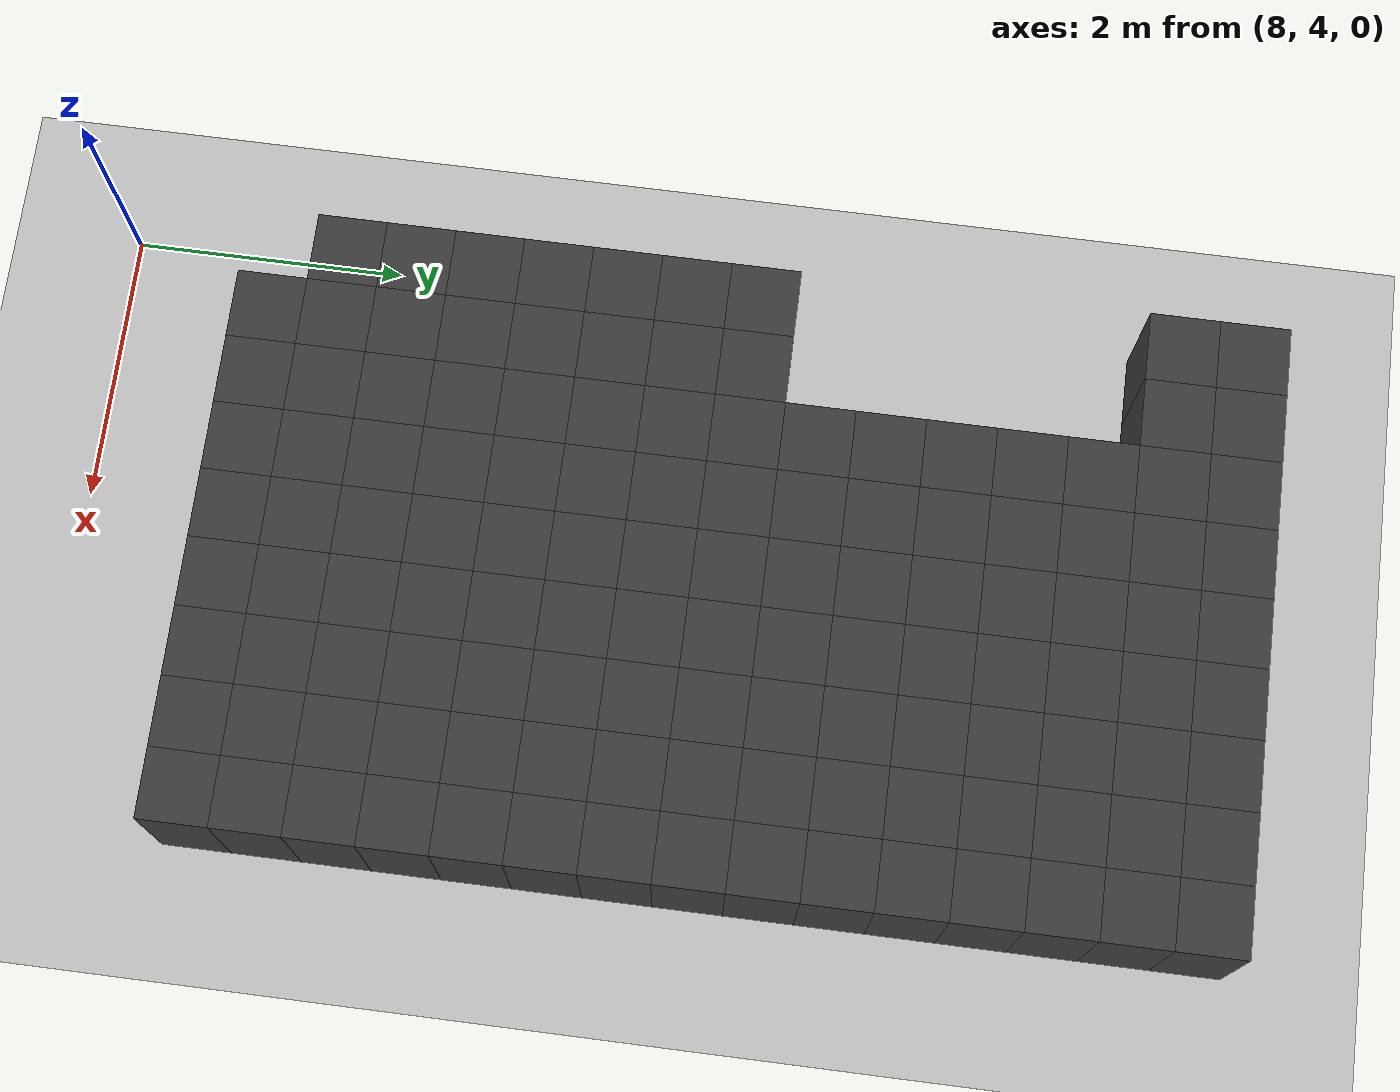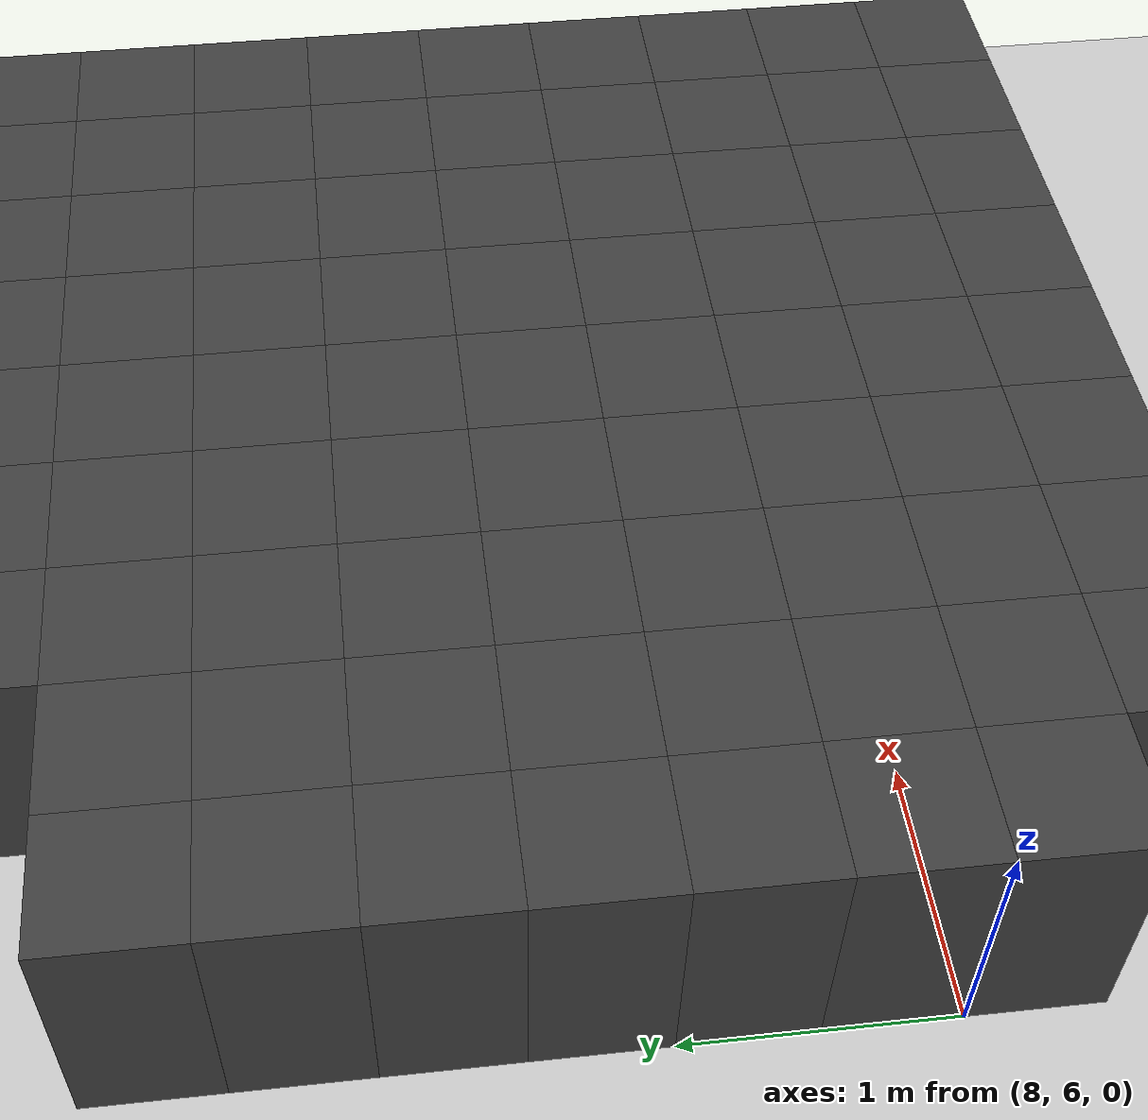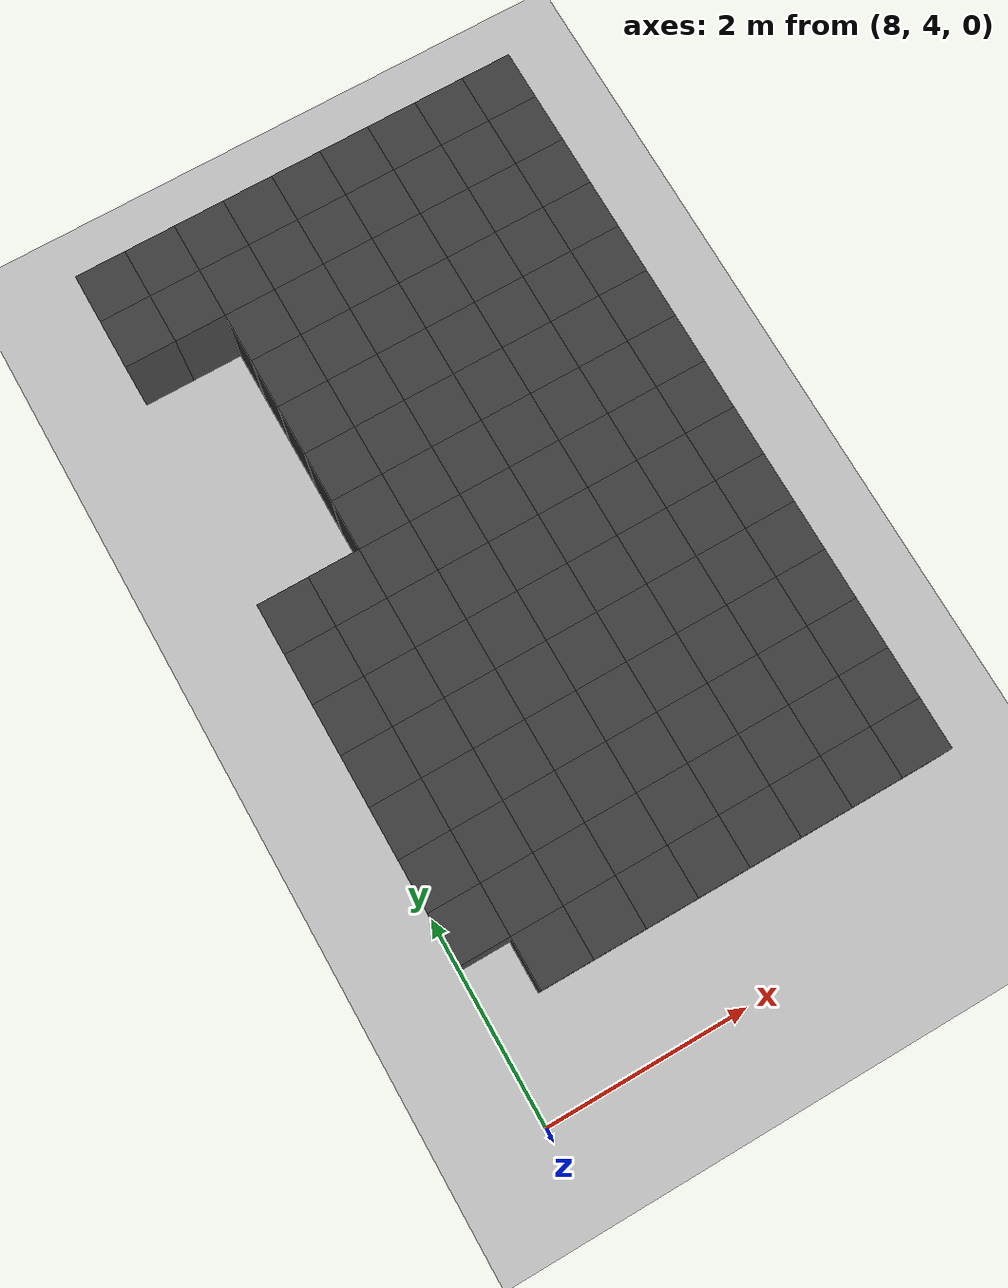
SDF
<sdf version="1.7">
 <world name="map_13820">
  <model name="ground_plane">
   <static>true</static>
   <link name="link">
    <collision name="collision">
     <geometry><plane><normal>0 0 1</normal><size>200 200</size></plane></geometry>
    </collision>
    <visual name="visual">
     <geometry><plane><normal>0 0 1</normal><size>200 200</size></plane></geometry>
     <material><ambient>0.8 0.8 0.8 1</ambient><diffuse>0.8 0.8 0.8 1</diffuse></material>
    </visual>
   </link>
  </model>
  <model name="maze_environment">
   <static>true</static>
   <link name="wall_41">
    <pose>8.250 12.250 0.500 0 0 0</pose>
    <collision name="col"><geometry><box><size>0.5 0.5 1.0</size></box></geometry></collision>
    <visual name="vis">
     <geometry><box><size>0.5 0.5 1.0</size></box></geometry>
     <material><ambient>0.15 0.15 0.15 1</ambient><diffuse>0.25 0.25 0.25 1</diffuse></material>
    </visual>
   </link>
   <link name="wall_42">
    <pose>8.750 12.250 0.500 0 0 0</pose>
    <collision name="col"><geometry><box><size>0.5 0.5 1.0</size></box></geometry></collision>
    <visual name="vis">
     <geometry><box><size>0.5 0.5 1.0</size></box></geometry>
     <material><ambient>0.15 0.15 0.15 1</ambient><diffuse>0.25 0.25 0.25 1</diffuse></material>
    </visual>
   </link>
   <link name="wall_43">
    <pose>9.250 12.250 0.500 0 0 0</pose>
    <collision name="col"><geometry><box><size>0.5 0.5 1.0</size></box></geometry></collision>
    <visual name="vis">
     <geometry><box><size>0.5 0.5 1.0</size></box></geometry>
     <material><ambient>0.15 0.15 0.15 1</ambient><diffuse>0.25 0.25 0.25 1</diffuse></material>
    </visual>
   </link>
   <link name="wall_44">
    <pose>9.750 12.250 0.500 0 0 0</pose>
    <collision name="col"><geometry><box><size>0.5 0.5 1.0</size></box></geometry></collision>
    <visual name="vis">
     <geometry><box><size>0.5 0.5 1.0</size></box></geometry>
     <material><ambient>0.15 0.15 0.15 1</ambient><diffuse>0.25 0.25 0.25 1</diffuse></material>
    </visual>
   </link>
   <link name="wall_45">
    <pose>10.250 12.250 0.500 0 0 0</pose>
    <collision name="col"><geometry><box><size>0.5 0.5 1.0</size></box></geometry></collision>
    <visual name="vis">
     <geometry><box><size>0.5 0.5 1.0</size></box></geometry>
     <material><ambient>0.15 0.15 0.15 1</ambient><diffuse>0.25 0.25 0.25 1</diffuse></material>
    </visual>
   </link>
   <link name="wall_46">
    <pose>10.750 12.250 0.500 0 0 0</pose>
    <collision name="col"><geometry><box><size>0.5 0.5 1.0</size></box></geometry></collision>
    <visual name="vis">
     <geometry><box><size>0.5 0.5 1.0</size></box></geometry>
     <material><ambient>0.15 0.15 0.15 1</ambient><diffuse>0.25 0.25 0.25 1</diffuse></material>
    </visual>
   </link>
   <link name="wall_47">
    <pose>11.250 12.250 0.500 0 0 0</pose>
    <collision name="col"><geometry><box><size>0.5 0.5 1.0</size></box></geometry></collision>
    <visual name="vis">
     <geometry><box><size>0.5 0.5 1.0</size></box></geometry>
     <material><ambient>0.15 0.15 0.15 1</ambient><diffuse>0.25 0.25 0.25 1</diffuse></material>
    </visual>
   </link>
   <link name="wall_48">
    <pose>11.750 12.250 0.500 0 0 0</pose>
    <collision name="col"><geometry><box><size>0.5 0.5 1.0</size></box></geometry></collision>
    <visual name="vis">
     <geometry><box><size>0.5 0.5 1.0</size></box></geometry>
     <material><ambient>0.15 0.15 0.15 1</ambient><diffuse>0.25 0.25 0.25 1</diffuse></material>
    </visual>
   </link>
   <link name="wall_49">
    <pose>12.250 12.250 0.500 0 0 0</pose>
    <collision name="col"><geometry><box><size>0.5 0.5 1.0</size></box></geometry></collision>
    <visual name="vis">
     <geometry><box><size>0.5 0.5 1.0</size></box></geometry>
     <material><ambient>0.15 0.15 0.15 1</ambient><diffuse>0.25 0.25 0.25 1</diffuse></material>
    </visual>
   </link>
   <link name="wall_88">
    <pose>8.250 11.750 0.500 0 0 0</pose>
    <collision name="col"><geometry><box><size>0.5 0.5 1.0</size></box></geometry></collision>
    <visual name="vis">
     <geometry><box><size>0.5 0.5 1.0</size></box></geometry>
     <material><ambient>0.15 0.15 0.15 1</ambient><diffuse>0.25 0.25 0.25 1</diffuse></material>
    </visual>
   </link>
   <link name="wall_89">
    <pose>8.750 11.750 0.500 0 0 0</pose>
    <collision name="col"><geometry><box><size>0.5 0.5 1.0</size></box></geometry></collision>
    <visual name="vis">
     <geometry><box><size>0.5 0.5 1.0</size></box></geometry>
     <material><ambient>0.15 0.15 0.15 1</ambient><diffuse>0.25 0.25 0.25 1</diffuse></material>
    </visual>
   </link>
   <link name="wall_90">
    <pose>9.250 11.750 0.500 0 0 0</pose>
    <collision name="col"><geometry><box><size>0.5 0.5 1.0</size></box></geometry></collision>
    <visual name="vis">
     <geometry><box><size>0.5 0.5 1.0</size></box></geometry>
     <material><ambient>0.15 0.15 0.15 1</ambient><diffuse>0.25 0.25 0.25 1</diffuse></material>
    </visual>
   </link>
   <link name="wall_91">
    <pose>9.750 11.750 0.500 0 0 0</pose>
    <collision name="col"><geometry><box><size>0.5 0.5 1.0</size></box></geometry></collision>
    <visual name="vis">
     <geometry><box><size>0.5 0.5 1.0</size></box></geometry>
     <material><ambient>0.15 0.15 0.15 1</ambient><diffuse>0.25 0.25 0.25 1</diffuse></material>
    </visual>
   </link>
   <link name="wall_92">
    <pose>10.250 11.750 0.500 0 0 0</pose>
    <collision name="col"><geometry><box><size>0.5 0.5 1.0</size></box></geometry></collision>
    <visual name="vis">
     <geometry><box><size>0.5 0.5 1.0</size></box></geometry>
     <material><ambient>0.15 0.15 0.15 1</ambient><diffuse>0.25 0.25 0.25 1</diffuse></material>
    </visual>
   </link>
   <link name="wall_93">
    <pose>10.750 11.750 0.500 0 0 0</pose>
    <collision name="col"><geometry><box><size>0.5 0.5 1.0</size></box></geometry></collision>
    <visual name="vis">
     <geometry><box><size>0.5 0.5 1.0</size></box></geometry>
     <material><ambient>0.15 0.15 0.15 1</ambient><diffuse>0.25 0.25 0.25 1</diffuse></material>
    </visual>
   </link>
   <link name="wall_94">
    <pose>11.250 11.750 0.500 0 0 0</pose>
    <collision name="col"><geometry><box><size>0.5 0.5 1.0</size></box></geometry></collision>
    <visual name="vis">
     <geometry><box><size>0.5 0.5 1.0</size></box></geometry>
     <material><ambient>0.15 0.15 0.15 1</ambient><diffuse>0.25 0.25 0.25 1</diffuse></material>
    </visual>
   </link>
   <link name="wall_95">
    <pose>11.750 11.750 0.500 0 0 0</pose>
    <collision name="col"><geometry><box><size>0.5 0.5 1.0</size></box></geometry></collision>
    <visual name="vis">
     <geometry><box><size>0.5 0.5 1.0</size></box></geometry>
     <material><ambient>0.15 0.15 0.15 1</ambient><diffuse>0.25 0.25 0.25 1</diffuse></material>
    </visual>
   </link>
   <link name="wall_96">
    <pose>12.250 11.750 0.500 0 0 0</pose>
    <collision name="col"><geometry><box><size>0.5 0.5 1.0</size></box></geometry></collision>
    <visual name="vis">
     <geometry><box><size>0.5 0.5 1.0</size></box></geometry>
     <material><ambient>0.15 0.15 0.15 1</ambient><diffuse>0.25 0.25 0.25 1</diffuse></material>
    </visual>
   </link>
   <link name="wall_117">
    <pose>9.250 11.250 0.500 0 0 0</pose>
    <collision name="col"><geometry><box><size>0.5 0.5 1.0</size></box></geometry></collision>
    <visual name="vis">
     <geometry><box><size>0.5 0.5 1.0</size></box></geometry>
     <material><ambient>0.15 0.15 0.15 1</ambient><diffuse>0.25 0.25 0.25 1</diffuse></material>
    </visual>
   </link>
   <link name="wall_118">
    <pose>9.750 11.250 0.500 0 0 0</pose>
    <collision name="col"><geometry><box><size>0.5 0.5 1.0</size></box></geometry></collision>
    <visual name="vis">
     <geometry><box><size>0.5 0.5 1.0</size></box></geometry>
     <material><ambient>0.15 0.15 0.15 1</ambient><diffuse>0.25 0.25 0.25 1</diffuse></material>
    </visual>
   </link>
   <link name="wall_119">
    <pose>10.250 11.250 0.500 0 0 0</pose>
    <collision name="col"><geometry><box><size>0.5 0.5 1.0</size></box></geometry></collision>
    <visual name="vis">
     <geometry><box><size>0.5 0.5 1.0</size></box></geometry>
     <material><ambient>0.15 0.15 0.15 1</ambient><diffuse>0.25 0.25 0.25 1</diffuse></material>
    </visual>
   </link>
   <link name="wall_120">
    <pose>10.750 11.250 0.500 0 0 0</pose>
    <collision name="col"><geometry><box><size>0.5 0.5 1.0</size></box></geometry></collision>
    <visual name="vis">
     <geometry><box><size>0.5 0.5 1.0</size></box></geometry>
     <material><ambient>0.15 0.15 0.15 1</ambient><diffuse>0.25 0.25 0.25 1</diffuse></material>
    </visual>
   </link>
   <link name="wall_121">
    <pose>11.250 11.250 0.500 0 0 0</pose>
    <collision name="col"><geometry><box><size>0.5 0.5 1.0</size></box></geometry></collision>
    <visual name="vis">
     <geometry><box><size>0.5 0.5 1.0</size></box></geometry>
     <material><ambient>0.15 0.15 0.15 1</ambient><diffuse>0.25 0.25 0.25 1</diffuse></material>
    </visual>
   </link>
   <link name="wall_122">
    <pose>11.750 11.250 0.500 0 0 0</pose>
    <collision name="col"><geometry><box><size>0.5 0.5 1.0</size></box></geometry></collision>
    <visual name="vis">
     <geometry><box><size>0.5 0.5 1.0</size></box></geometry>
     <material><ambient>0.15 0.15 0.15 1</ambient><diffuse>0.25 0.25 0.25 1</diffuse></material>
    </visual>
   </link>
   <link name="wall_123">
    <pose>12.250 11.250 0.500 0 0 0</pose>
    <collision name="col"><geometry><box><size>0.5 0.5 1.0</size></box></geometry></collision>
    <visual name="vis">
     <geometry><box><size>0.5 0.5 1.0</size></box></geometry>
     <material><ambient>0.15 0.15 0.15 1</ambient><diffuse>0.25 0.25 0.25 1</diffuse></material>
    </visual>
   </link>
   <link name="wall_144">
    <pose>9.250 10.750 0.500 0 0 0</pose>
    <collision name="col"><geometry><box><size>0.5 0.5 1.0</size></box></geometry></collision>
    <visual name="vis">
     <geometry><box><size>0.5 0.5 1.0</size></box></geometry>
     <material><ambient>0.15 0.15 0.15 1</ambient><diffuse>0.25 0.25 0.25 1</diffuse></material>
    </visual>
   </link>
   <link name="wall_145">
    <pose>9.750 10.750 0.500 0 0 0</pose>
    <collision name="col"><geometry><box><size>0.5 0.5 1.0</size></box></geometry></collision>
    <visual name="vis">
     <geometry><box><size>0.5 0.5 1.0</size></box></geometry>
     <material><ambient>0.15 0.15 0.15 1</ambient><diffuse>0.25 0.25 0.25 1</diffuse></material>
    </visual>
   </link>
   <link name="wall_146">
    <pose>10.250 10.750 0.500 0 0 0</pose>
    <collision name="col"><geometry><box><size>0.5 0.5 1.0</size></box></geometry></collision>
    <visual name="vis">
     <geometry><box><size>0.5 0.5 1.0</size></box></geometry>
     <material><ambient>0.15 0.15 0.15 1</ambient><diffuse>0.25 0.25 0.25 1</diffuse></material>
    </visual>
   </link>
   <link name="wall_147">
    <pose>10.750 10.750 0.500 0 0 0</pose>
    <collision name="col"><geometry><box><size>0.5 0.5 1.0</size></box></geometry></collision>
    <visual name="vis">
     <geometry><box><size>0.5 0.5 1.0</size></box></geometry>
     <material><ambient>0.15 0.15 0.15 1</ambient><diffuse>0.25 0.25 0.25 1</diffuse></material>
    </visual>
   </link>
   <link name="wall_148">
    <pose>11.250 10.750 0.500 0 0 0</pose>
    <collision name="col"><geometry><box><size>0.5 0.5 1.0</size></box></geometry></collision>
    <visual name="vis">
     <geometry><box><size>0.5 0.5 1.0</size></box></geometry>
     <material><ambient>0.15 0.15 0.15 1</ambient><diffuse>0.25 0.25 0.25 1</diffuse></material>
    </visual>
   </link>
   <link name="wall_149">
    <pose>11.750 10.750 0.500 0 0 0</pose>
    <collision name="col"><geometry><box><size>0.5 0.5 1.0</size></box></geometry></collision>
    <visual name="vis">
     <geometry><box><size>0.5 0.5 1.0</size></box></geometry>
     <material><ambient>0.15 0.15 0.15 1</ambient><diffuse>0.25 0.25 0.25 1</diffuse></material>
    </visual>
   </link>
   <link name="wall_150">
    <pose>12.250 10.750 0.500 0 0 0</pose>
    <collision name="col"><geometry><box><size>0.5 0.5 1.0</size></box></geometry></collision>
    <visual name="vis">
     <geometry><box><size>0.5 0.5 1.0</size></box></geometry>
     <material><ambient>0.15 0.15 0.15 1</ambient><diffuse>0.25 0.25 0.25 1</diffuse></material>
    </visual>
   </link>
   <link name="wall_163">
    <pose>9.250 10.250 0.500 0 0 0</pose>
    <collision name="col"><geometry><box><size>0.5 0.5 1.0</size></box></geometry></collision>
    <visual name="vis">
     <geometry><box><size>0.5 0.5 1.0</size></box></geometry>
     <material><ambient>0.15 0.15 0.15 1</ambient><diffuse>0.25 0.25 0.25 1</diffuse></material>
    </visual>
   </link>
   <link name="wall_164">
    <pose>9.750 10.250 0.500 0 0 0</pose>
    <collision name="col"><geometry><box><size>0.5 0.5 1.0</size></box></geometry></collision>
    <visual name="vis">
     <geometry><box><size>0.5 0.5 1.0</size></box></geometry>
     <material><ambient>0.15 0.15 0.15 1</ambient><diffuse>0.25 0.25 0.25 1</diffuse></material>
    </visual>
   </link>
   <link name="wall_165">
    <pose>10.250 10.250 0.500 0 0 0</pose>
    <collision name="col"><geometry><box><size>0.5 0.5 1.0</size></box></geometry></collision>
    <visual name="vis">
     <geometry><box><size>0.5 0.5 1.0</size></box></geometry>
     <material><ambient>0.15 0.15 0.15 1</ambient><diffuse>0.25 0.25 0.25 1</diffuse></material>
    </visual>
   </link>
   <link name="wall_166">
    <pose>10.750 10.250 0.500 0 0 0</pose>
    <collision name="col"><geometry><box><size>0.5 0.5 1.0</size></box></geometry></collision>
    <visual name="vis">
     <geometry><box><size>0.5 0.5 1.0</size></box></geometry>
     <material><ambient>0.15 0.15 0.15 1</ambient><diffuse>0.25 0.25 0.25 1</diffuse></material>
    </visual>
   </link>
   <link name="wall_167">
    <pose>11.250 10.250 0.500 0 0 0</pose>
    <collision name="col"><geometry><box><size>0.5 0.5 1.0</size></box></geometry></collision>
    <visual name="vis">
     <geometry><box><size>0.5 0.5 1.0</size></box></geometry>
     <material><ambient>0.15 0.15 0.15 1</ambient><diffuse>0.25 0.25 0.25 1</diffuse></material>
    </visual>
   </link>
   <link name="wall_168">
    <pose>11.750 10.250 0.500 0 0 0</pose>
    <collision name="col"><geometry><box><size>0.5 0.5 1.0</size></box></geometry></collision>
    <visual name="vis">
     <geometry><box><size>0.5 0.5 1.0</size></box></geometry>
     <material><ambient>0.15 0.15 0.15 1</ambient><diffuse>0.25 0.25 0.25 1</diffuse></material>
    </visual>
   </link>
   <link name="wall_169">
    <pose>12.250 10.250 0.500 0 0 0</pose>
    <collision name="col"><geometry><box><size>0.5 0.5 1.0</size></box></geometry></collision>
    <visual name="vis">
     <geometry><box><size>0.5 0.5 1.0</size></box></geometry>
     <material><ambient>0.15 0.15 0.15 1</ambient><diffuse>0.25 0.25 0.25 1</diffuse></material>
    </visual>
   </link>
   <link name="wall_185">
    <pose>9.250 9.750 0.500 0 0 0</pose>
    <collision name="col"><geometry><box><size>0.5 0.5 1.0</size></box></geometry></collision>
    <visual name="vis">
     <geometry><box><size>0.5 0.5 1.0</size></box></geometry>
     <material><ambient>0.15 0.15 0.15 1</ambient><diffuse>0.25 0.25 0.25 1</diffuse></material>
    </visual>
   </link>
   <link name="wall_186">
    <pose>9.750 9.750 0.500 0 0 0</pose>
    <collision name="col"><geometry><box><size>0.5 0.5 1.0</size></box></geometry></collision>
    <visual name="vis">
     <geometry><box><size>0.5 0.5 1.0</size></box></geometry>
     <material><ambient>0.15 0.15 0.15 1</ambient><diffuse>0.25 0.25 0.25 1</diffuse></material>
    </visual>
   </link>
   <link name="wall_187">
    <pose>10.250 9.750 0.500 0 0 0</pose>
    <collision name="col"><geometry><box><size>0.5 0.5 1.0</size></box></geometry></collision>
    <visual name="vis">
     <geometry><box><size>0.5 0.5 1.0</size></box></geometry>
     <material><ambient>0.15 0.15 0.15 1</ambient><diffuse>0.25 0.25 0.25 1</diffuse></material>
    </visual>
   </link>
   <link name="wall_188">
    <pose>10.750 9.750 0.500 0 0 0</pose>
    <collision name="col"><geometry><box><size>0.5 0.5 1.0</size></box></geometry></collision>
    <visual name="vis">
     <geometry><box><size>0.5 0.5 1.0</size></box></geometry>
     <material><ambient>0.15 0.15 0.15 1</ambient><diffuse>0.25 0.25 0.25 1</diffuse></material>
    </visual>
   </link>
   <link name="wall_189">
    <pose>11.250 9.750 0.500 0 0 0</pose>
    <collision name="col"><geometry><box><size>0.5 0.5 1.0</size></box></geometry></collision>
    <visual name="vis">
     <geometry><box><size>0.5 0.5 1.0</size></box></geometry>
     <material><ambient>0.15 0.15 0.15 1</ambient><diffuse>0.25 0.25 0.25 1</diffuse></material>
    </visual>
   </link>
   <link name="wall_190">
    <pose>11.750 9.750 0.500 0 0 0</pose>
    <collision name="col"><geometry><box><size>0.5 0.5 1.0</size></box></geometry></collision>
    <visual name="vis">
     <geometry><box><size>0.5 0.5 1.0</size></box></geometry>
     <material><ambient>0.15 0.15 0.15 1</ambient><diffuse>0.25 0.25 0.25 1</diffuse></material>
    </visual>
   </link>
   <link name="wall_191">
    <pose>12.250 9.750 0.500 0 0 0</pose>
    <collision name="col"><geometry><box><size>0.5 0.5 1.0</size></box></geometry></collision>
    <visual name="vis">
     <geometry><box><size>0.5 0.5 1.0</size></box></geometry>
     <material><ambient>0.15 0.15 0.15 1</ambient><diffuse>0.25 0.25 0.25 1</diffuse></material>
    </visual>
   </link>
   <link name="wall_208">
    <pose>9.250 9.250 0.500 0 0 0</pose>
    <collision name="col"><geometry><box><size>0.5 0.5 1.0</size></box></geometry></collision>
    <visual name="vis">
     <geometry><box><size>0.5 0.5 1.0</size></box></geometry>
     <material><ambient>0.15 0.15 0.15 1</ambient><diffuse>0.25 0.25 0.25 1</diffuse></material>
    </visual>
   </link>
   <link name="wall_209">
    <pose>9.750 9.250 0.500 0 0 0</pose>
    <collision name="col"><geometry><box><size>0.5 0.5 1.0</size></box></geometry></collision>
    <visual name="vis">
     <geometry><box><size>0.5 0.5 1.0</size></box></geometry>
     <material><ambient>0.15 0.15 0.15 1</ambient><diffuse>0.25 0.25 0.25 1</diffuse></material>
    </visual>
   </link>
   <link name="wall_210">
    <pose>10.250 9.250 0.500 0 0 0</pose>
    <collision name="col"><geometry><box><size>0.5 0.5 1.0</size></box></geometry></collision>
    <visual name="vis">
     <geometry><box><size>0.5 0.5 1.0</size></box></geometry>
     <material><ambient>0.15 0.15 0.15 1</ambient><diffuse>0.25 0.25 0.25 1</diffuse></material>
    </visual>
   </link>
   <link name="wall_211">
    <pose>10.750 9.250 0.500 0 0 0</pose>
    <collision name="col"><geometry><box><size>0.5 0.5 1.0</size></box></geometry></collision>
    <visual name="vis">
     <geometry><box><size>0.5 0.5 1.0</size></box></geometry>
     <material><ambient>0.15 0.15 0.15 1</ambient><diffuse>0.25 0.25 0.25 1</diffuse></material>
    </visual>
   </link>
   <link name="wall_212">
    <pose>11.250 9.250 0.500 0 0 0</pose>
    <collision name="col"><geometry><box><size>0.5 0.5 1.0</size></box></geometry></collision>
    <visual name="vis">
     <geometry><box><size>0.5 0.5 1.0</size></box></geometry>
     <material><ambient>0.15 0.15 0.15 1</ambient><diffuse>0.25 0.25 0.25 1</diffuse></material>
    </visual>
   </link>
   <link name="wall_213">
    <pose>11.750 9.250 0.500 0 0 0</pose>
    <collision name="col"><geometry><box><size>0.5 0.5 1.0</size></box></geometry></collision>
    <visual name="vis">
     <geometry><box><size>0.5 0.5 1.0</size></box></geometry>
     <material><ambient>0.15 0.15 0.15 1</ambient><diffuse>0.25 0.25 0.25 1</diffuse></material>
    </visual>
   </link>
   <link name="wall_214">
    <pose>12.250 9.250 0.500 0 0 0</pose>
    <collision name="col"><geometry><box><size>0.5 0.5 1.0</size></box></geometry></collision>
    <visual name="vis">
     <geometry><box><size>0.5 0.5 1.0</size></box></geometry>
     <material><ambient>0.15 0.15 0.15 1</ambient><diffuse>0.25 0.25 0.25 1</diffuse></material>
    </visual>
   </link>
   <link name="wall_235">
    <pose>8.250 8.750 0.500 0 0 0</pose>
    <collision name="col"><geometry><box><size>0.5 0.5 1.0</size></box></geometry></collision>
    <visual name="vis">
     <geometry><box><size>0.5 0.5 1.0</size></box></geometry>
     <material><ambient>0.15 0.15 0.15 1</ambient><diffuse>0.25 0.25 0.25 1</diffuse></material>
    </visual>
   </link>
   <link name="wall_236">
    <pose>8.750 8.750 0.500 0 0 0</pose>
    <collision name="col"><geometry><box><size>0.5 0.5 1.0</size></box></geometry></collision>
    <visual name="vis">
     <geometry><box><size>0.5 0.5 1.0</size></box></geometry>
     <material><ambient>0.15 0.15 0.15 1</ambient><diffuse>0.25 0.25 0.25 1</diffuse></material>
    </visual>
   </link>
   <link name="wall_237">
    <pose>9.250 8.750 0.500 0 0 0</pose>
    <collision name="col"><geometry><box><size>0.5 0.5 1.0</size></box></geometry></collision>
    <visual name="vis">
     <geometry><box><size>0.5 0.5 1.0</size></box></geometry>
     <material><ambient>0.15 0.15 0.15 1</ambient><diffuse>0.25 0.25 0.25 1</diffuse></material>
    </visual>
   </link>
   <link name="wall_238">
    <pose>9.750 8.750 0.500 0 0 0</pose>
    <collision name="col"><geometry><box><size>0.5 0.5 1.0</size></box></geometry></collision>
    <visual name="vis">
     <geometry><box><size>0.5 0.5 1.0</size></box></geometry>
     <material><ambient>0.15 0.15 0.15 1</ambient><diffuse>0.25 0.25 0.25 1</diffuse></material>
    </visual>
   </link>
   <link name="wall_239">
    <pose>10.250 8.750 0.500 0 0 0</pose>
    <collision name="col"><geometry><box><size>0.5 0.5 1.0</size></box></geometry></collision>
    <visual name="vis">
     <geometry><box><size>0.5 0.5 1.0</size></box></geometry>
     <material><ambient>0.15 0.15 0.15 1</ambient><diffuse>0.25 0.25 0.25 1</diffuse></material>
    </visual>
   </link>
   <link name="wall_240">
    <pose>10.750 8.750 0.500 0 0 0</pose>
    <collision name="col"><geometry><box><size>0.5 0.5 1.0</size></box></geometry></collision>
    <visual name="vis">
     <geometry><box><size>0.5 0.5 1.0</size></box></geometry>
     <material><ambient>0.15 0.15 0.15 1</ambient><diffuse>0.25 0.25 0.25 1</diffuse></material>
    </visual>
   </link>
   <link name="wall_241">
    <pose>11.250 8.750 0.500 0 0 0</pose>
    <collision name="col"><geometry><box><size>0.5 0.5 1.0</size></box></geometry></collision>
    <visual name="vis">
     <geometry><box><size>0.5 0.5 1.0</size></box></geometry>
     <material><ambient>0.15 0.15 0.15 1</ambient><diffuse>0.25 0.25 0.25 1</diffuse></material>
    </visual>
   </link>
   <link name="wall_242">
    <pose>11.750 8.750 0.500 0 0 0</pose>
    <collision name="col"><geometry><box><size>0.5 0.5 1.0</size></box></geometry></collision>
    <visual name="vis">
     <geometry><box><size>0.5 0.5 1.0</size></box></geometry>
     <material><ambient>0.15 0.15 0.15 1</ambient><diffuse>0.25 0.25 0.25 1</diffuse></material>
    </visual>
   </link>
   <link name="wall_243">
    <pose>12.250 8.750 0.500 0 0 0</pose>
    <collision name="col"><geometry><box><size>0.5 0.5 1.0</size></box></geometry></collision>
    <visual name="vis">
     <geometry><box><size>0.5 0.5 1.0</size></box></geometry>
     <material><ambient>0.15 0.15 0.15 1</ambient><diffuse>0.25 0.25 0.25 1</diffuse></material>
    </visual>
   </link>
   <link name="wall_271">
    <pose>8.250 8.250 0.500 0 0 0</pose>
    <collision name="col"><geometry><box><size>0.5 0.5 1.0</size></box></geometry></collision>
    <visual name="vis">
     <geometry><box><size>0.5 0.5 1.0</size></box></geometry>
     <material><ambient>0.15 0.15 0.15 1</ambient><diffuse>0.25 0.25 0.25 1</diffuse></material>
    </visual>
   </link>
   <link name="wall_272">
    <pose>8.750 8.250 0.500 0 0 0</pose>
    <collision name="col"><geometry><box><size>0.5 0.5 1.0</size></box></geometry></collision>
    <visual name="vis">
     <geometry><box><size>0.5 0.5 1.0</size></box></geometry>
     <material><ambient>0.15 0.15 0.15 1</ambient><diffuse>0.25 0.25 0.25 1</diffuse></material>
    </visual>
   </link>
   <link name="wall_273">
    <pose>9.250 8.250 0.500 0 0 0</pose>
    <collision name="col"><geometry><box><size>0.5 0.5 1.0</size></box></geometry></collision>
    <visual name="vis">
     <geometry><box><size>0.5 0.5 1.0</size></box></geometry>
     <material><ambient>0.15 0.15 0.15 1</ambient><diffuse>0.25 0.25 0.25 1</diffuse></material>
    </visual>
   </link>
   <link name="wall_274">
    <pose>9.750 8.250 0.500 0 0 0</pose>
    <collision name="col"><geometry><box><size>0.5 0.5 1.0</size></box></geometry></collision>
    <visual name="vis">
     <geometry><box><size>0.5 0.5 1.0</size></box></geometry>
     <material><ambient>0.15 0.15 0.15 1</ambient><diffuse>0.25 0.25 0.25 1</diffuse></material>
    </visual>
   </link>
   <link name="wall_275">
    <pose>10.250 8.250 0.500 0 0 0</pose>
    <collision name="col"><geometry><box><size>0.5 0.5 1.0</size></box></geometry></collision>
    <visual name="vis">
     <geometry><box><size>0.5 0.5 1.0</size></box></geometry>
     <material><ambient>0.15 0.15 0.15 1</ambient><diffuse>0.25 0.25 0.25 1</diffuse></material>
    </visual>
   </link>
   <link name="wall_276">
    <pose>10.750 8.250 0.500 0 0 0</pose>
    <collision name="col"><geometry><box><size>0.5 0.5 1.0</size></box></geometry></collision>
    <visual name="vis">
     <geometry><box><size>0.5 0.5 1.0</size></box></geometry>
     <material><ambient>0.15 0.15 0.15 1</ambient><diffuse>0.25 0.25 0.25 1</diffuse></material>
    </visual>
   </link>
   <link name="wall_277">
    <pose>11.250 8.250 0.500 0 0 0</pose>
    <collision name="col"><geometry><box><size>0.5 0.5 1.0</size></box></geometry></collision>
    <visual name="vis">
     <geometry><box><size>0.5 0.5 1.0</size></box></geometry>
     <material><ambient>0.15 0.15 0.15 1</ambient><diffuse>0.25 0.25 0.25 1</diffuse></material>
    </visual>
   </link>
   <link name="wall_278">
    <pose>11.750 8.250 0.500 0 0 0</pose>
    <collision name="col"><geometry><box><size>0.5 0.5 1.0</size></box></geometry></collision>
    <visual name="vis">
     <geometry><box><size>0.5 0.5 1.0</size></box></geometry>
     <material><ambient>0.15 0.15 0.15 1</ambient><diffuse>0.25 0.25 0.25 1</diffuse></material>
    </visual>
   </link>
   <link name="wall_279">
    <pose>12.250 8.250 0.500 0 0 0</pose>
    <collision name="col"><geometry><box><size>0.5 0.5 1.0</size></box></geometry></collision>
    <visual name="vis">
     <geometry><box><size>0.5 0.5 1.0</size></box></geometry>
     <material><ambient>0.15 0.15 0.15 1</ambient><diffuse>0.25 0.25 0.25 1</diffuse></material>
    </visual>
   </link>
   <link name="wall_310">
    <pose>8.250 7.750 0.500 0 0 0</pose>
    <collision name="col"><geometry><box><size>0.5 0.5 1.0</size></box></geometry></collision>
    <visual name="vis">
     <geometry><box><size>0.5 0.5 1.0</size></box></geometry>
     <material><ambient>0.15 0.15 0.15 1</ambient><diffuse>0.25 0.25 0.25 1</diffuse></material>
    </visual>
   </link>
   <link name="wall_311">
    <pose>8.750 7.750 0.500 0 0 0</pose>
    <collision name="col"><geometry><box><size>0.5 0.5 1.0</size></box></geometry></collision>
    <visual name="vis">
     <geometry><box><size>0.5 0.5 1.0</size></box></geometry>
     <material><ambient>0.15 0.15 0.15 1</ambient><diffuse>0.25 0.25 0.25 1</diffuse></material>
    </visual>
   </link>
   <link name="wall_312">
    <pose>9.250 7.750 0.500 0 0 0</pose>
    <collision name="col"><geometry><box><size>0.5 0.5 1.0</size></box></geometry></collision>
    <visual name="vis">
     <geometry><box><size>0.5 0.5 1.0</size></box></geometry>
     <material><ambient>0.15 0.15 0.15 1</ambient><diffuse>0.25 0.25 0.25 1</diffuse></material>
    </visual>
   </link>
   <link name="wall_313">
    <pose>9.750 7.750 0.500 0 0 0</pose>
    <collision name="col"><geometry><box><size>0.5 0.5 1.0</size></box></geometry></collision>
    <visual name="vis">
     <geometry><box><size>0.5 0.5 1.0</size></box></geometry>
     <material><ambient>0.15 0.15 0.15 1</ambient><diffuse>0.25 0.25 0.25 1</diffuse></material>
    </visual>
   </link>
   <link name="wall_314">
    <pose>10.250 7.750 0.500 0 0 0</pose>
    <collision name="col"><geometry><box><size>0.5 0.5 1.0</size></box></geometry></collision>
    <visual name="vis">
     <geometry><box><size>0.5 0.5 1.0</size></box></geometry>
     <material><ambient>0.15 0.15 0.15 1</ambient><diffuse>0.25 0.25 0.25 1</diffuse></material>
    </visual>
   </link>
   <link name="wall_315">
    <pose>10.750 7.750 0.500 0 0 0</pose>
    <collision name="col"><geometry><box><size>0.5 0.5 1.0</size></box></geometry></collision>
    <visual name="vis">
     <geometry><box><size>0.5 0.5 1.0</size></box></geometry>
     <material><ambient>0.15 0.15 0.15 1</ambient><diffuse>0.25 0.25 0.25 1</diffuse></material>
    </visual>
   </link>
   <link name="wall_316">
    <pose>11.250 7.750 0.500 0 0 0</pose>
    <collision name="col"><geometry><box><size>0.5 0.5 1.0</size></box></geometry></collision>
    <visual name="vis">
     <geometry><box><size>0.5 0.5 1.0</size></box></geometry>
     <material><ambient>0.15 0.15 0.15 1</ambient><diffuse>0.25 0.25 0.25 1</diffuse></material>
    </visual>
   </link>
   <link name="wall_317">
    <pose>11.750 7.750 0.500 0 0 0</pose>
    <collision name="col"><geometry><box><size>0.5 0.5 1.0</size></box></geometry></collision>
    <visual name="vis">
     <geometry><box><size>0.5 0.5 1.0</size></box></geometry>
     <material><ambient>0.15 0.15 0.15 1</ambient><diffuse>0.25 0.25 0.25 1</diffuse></material>
    </visual>
   </link>
   <link name="wall_318">
    <pose>12.250 7.750 0.500 0 0 0</pose>
    <collision name="col"><geometry><box><size>0.5 0.5 1.0</size></box></geometry></collision>
    <visual name="vis">
     <geometry><box><size>0.5 0.5 1.0</size></box></geometry>
     <material><ambient>0.15 0.15 0.15 1</ambient><diffuse>0.25 0.25 0.25 1</diffuse></material>
    </visual>
   </link>
   <link name="wall_345">
    <pose>8.250 7.250 0.500 0 0 0</pose>
    <collision name="col"><geometry><box><size>0.5 0.5 1.0</size></box></geometry></collision>
    <visual name="vis">
     <geometry><box><size>0.5 0.5 1.0</size></box></geometry>
     <material><ambient>0.15 0.15 0.15 1</ambient><diffuse>0.25 0.25 0.25 1</diffuse></material>
    </visual>
   </link>
   <link name="wall_346">
    <pose>8.750 7.250 0.500 0 0 0</pose>
    <collision name="col"><geometry><box><size>0.5 0.5 1.0</size></box></geometry></collision>
    <visual name="vis">
     <geometry><box><size>0.5 0.5 1.0</size></box></geometry>
     <material><ambient>0.15 0.15 0.15 1</ambient><diffuse>0.25 0.25 0.25 1</diffuse></material>
    </visual>
   </link>
   <link name="wall_347">
    <pose>9.250 7.250 0.500 0 0 0</pose>
    <collision name="col"><geometry><box><size>0.5 0.5 1.0</size></box></geometry></collision>
    <visual name="vis">
     <geometry><box><size>0.5 0.5 1.0</size></box></geometry>
     <material><ambient>0.15 0.15 0.15 1</ambient><diffuse>0.25 0.25 0.25 1</diffuse></material>
    </visual>
   </link>
   <link name="wall_348">
    <pose>9.750 7.250 0.500 0 0 0</pose>
    <collision name="col"><geometry><box><size>0.5 0.5 1.0</size></box></geometry></collision>
    <visual name="vis">
     <geometry><box><size>0.5 0.5 1.0</size></box></geometry>
     <material><ambient>0.15 0.15 0.15 1</ambient><diffuse>0.25 0.25 0.25 1</diffuse></material>
    </visual>
   </link>
   <link name="wall_349">
    <pose>10.250 7.250 0.500 0 0 0</pose>
    <collision name="col"><geometry><box><size>0.5 0.5 1.0</size></box></geometry></collision>
    <visual name="vis">
     <geometry><box><size>0.5 0.5 1.0</size></box></geometry>
     <material><ambient>0.15 0.15 0.15 1</ambient><diffuse>0.25 0.25 0.25 1</diffuse></material>
    </visual>
   </link>
   <link name="wall_350">
    <pose>10.750 7.250 0.500 0 0 0</pose>
    <collision name="col"><geometry><box><size>0.5 0.5 1.0</size></box></geometry></collision>
    <visual name="vis">
     <geometry><box><size>0.5 0.5 1.0</size></box></geometry>
     <material><ambient>0.15 0.15 0.15 1</ambient><diffuse>0.25 0.25 0.25 1</diffuse></material>
    </visual>
   </link>
   <link name="wall_351">
    <pose>11.250 7.250 0.500 0 0 0</pose>
    <collision name="col"><geometry><box><size>0.5 0.5 1.0</size></box></geometry></collision>
    <visual name="vis">
     <geometry><box><size>0.5 0.5 1.0</size></box></geometry>
     <material><ambient>0.15 0.15 0.15 1</ambient><diffuse>0.25 0.25 0.25 1</diffuse></material>
    </visual>
   </link>
   <link name="wall_352">
    <pose>11.750 7.250 0.500 0 0 0</pose>
    <collision name="col"><geometry><box><size>0.5 0.5 1.0</size></box></geometry></collision>
    <visual name="vis">
     <geometry><box><size>0.5 0.5 1.0</size></box></geometry>
     <material><ambient>0.15 0.15 0.15 1</ambient><diffuse>0.25 0.25 0.25 1</diffuse></material>
    </visual>
   </link>
   <link name="wall_353">
    <pose>12.250 7.250 0.500 0 0 0</pose>
    <collision name="col"><geometry><box><size>0.5 0.5 1.0</size></box></geometry></collision>
    <visual name="vis">
     <geometry><box><size>0.5 0.5 1.0</size></box></geometry>
     <material><ambient>0.15 0.15 0.15 1</ambient><diffuse>0.25 0.25 0.25 1</diffuse></material>
    </visual>
   </link>
   <link name="wall_377">
    <pose>8.250 6.750 0.500 0 0 0</pose>
    <collision name="col"><geometry><box><size>0.5 0.5 1.0</size></box></geometry></collision>
    <visual name="vis">
     <geometry><box><size>0.5 0.5 1.0</size></box></geometry>
     <material><ambient>0.15 0.15 0.15 1</ambient><diffuse>0.25 0.25 0.25 1</diffuse></material>
    </visual>
   </link>
   <link name="wall_378">
    <pose>8.750 6.750 0.500 0 0 0</pose>
    <collision name="col"><geometry><box><size>0.5 0.5 1.0</size></box></geometry></collision>
    <visual name="vis">
     <geometry><box><size>0.5 0.5 1.0</size></box></geometry>
     <material><ambient>0.15 0.15 0.15 1</ambient><diffuse>0.25 0.25 0.25 1</diffuse></material>
    </visual>
   </link>
   <link name="wall_379">
    <pose>9.250 6.750 0.500 0 0 0</pose>
    <collision name="col"><geometry><box><size>0.5 0.5 1.0</size></box></geometry></collision>
    <visual name="vis">
     <geometry><box><size>0.5 0.5 1.0</size></box></geometry>
     <material><ambient>0.15 0.15 0.15 1</ambient><diffuse>0.25 0.25 0.25 1</diffuse></material>
    </visual>
   </link>
   <link name="wall_380">
    <pose>9.750 6.750 0.500 0 0 0</pose>
    <collision name="col"><geometry><box><size>0.5 0.5 1.0</size></box></geometry></collision>
    <visual name="vis">
     <geometry><box><size>0.5 0.5 1.0</size></box></geometry>
     <material><ambient>0.15 0.15 0.15 1</ambient><diffuse>0.25 0.25 0.25 1</diffuse></material>
    </visual>
   </link>
   <link name="wall_381">
    <pose>10.250 6.750 0.500 0 0 0</pose>
    <collision name="col"><geometry><box><size>0.5 0.5 1.0</size></box></geometry></collision>
    <visual name="vis">
     <geometry><box><size>0.5 0.5 1.0</size></box></geometry>
     <material><ambient>0.15 0.15 0.15 1</ambient><diffuse>0.25 0.25 0.25 1</diffuse></material>
    </visual>
   </link>
   <link name="wall_382">
    <pose>10.750 6.750 0.500 0 0 0</pose>
    <collision name="col"><geometry><box><size>0.5 0.5 1.0</size></box></geometry></collision>
    <visual name="vis">
     <geometry><box><size>0.5 0.5 1.0</size></box></geometry>
     <material><ambient>0.15 0.15 0.15 1</ambient><diffuse>0.25 0.25 0.25 1</diffuse></material>
    </visual>
   </link>
   <link name="wall_383">
    <pose>11.250 6.750 0.500 0 0 0</pose>
    <collision name="col"><geometry><box><size>0.5 0.5 1.0</size></box></geometry></collision>
    <visual name="vis">
     <geometry><box><size>0.5 0.5 1.0</size></box></geometry>
     <material><ambient>0.15 0.15 0.15 1</ambient><diffuse>0.25 0.25 0.25 1</diffuse></material>
    </visual>
   </link>
   <link name="wall_384">
    <pose>11.750 6.750 0.500 0 0 0</pose>
    <collision name="col"><geometry><box><size>0.5 0.5 1.0</size></box></geometry></collision>
    <visual name="vis">
     <geometry><box><size>0.5 0.5 1.0</size></box></geometry>
     <material><ambient>0.15 0.15 0.15 1</ambient><diffuse>0.25 0.25 0.25 1</diffuse></material>
    </visual>
   </link>
   <link name="wall_385">
    <pose>12.250 6.750 0.500 0 0 0</pose>
    <collision name="col"><geometry><box><size>0.5 0.5 1.0</size></box></geometry></collision>
    <visual name="vis">
     <geometry><box><size>0.5 0.5 1.0</size></box></geometry>
     <material><ambient>0.15 0.15 0.15 1</ambient><diffuse>0.25 0.25 0.25 1</diffuse></material>
    </visual>
   </link>
   <link name="wall_409">
    <pose>8.250 6.250 0.500 0 0 0</pose>
    <collision name="col"><geometry><box><size>0.5 0.5 1.0</size></box></geometry></collision>
    <visual name="vis">
     <geometry><box><size>0.5 0.5 1.0</size></box></geometry>
     <material><ambient>0.15 0.15 0.15 1</ambient><diffuse>0.25 0.25 0.25 1</diffuse></material>
    </visual>
   </link>
   <link name="wall_410">
    <pose>8.750 6.250 0.500 0 0 0</pose>
    <collision name="col"><geometry><box><size>0.5 0.5 1.0</size></box></geometry></collision>
    <visual name="vis">
     <geometry><box><size>0.5 0.5 1.0</size></box></geometry>
     <material><ambient>0.15 0.15 0.15 1</ambient><diffuse>0.25 0.25 0.25 1</diffuse></material>
    </visual>
   </link>
   <link name="wall_411">
    <pose>9.250 6.250 0.500 0 0 0</pose>
    <collision name="col"><geometry><box><size>0.5 0.5 1.0</size></box></geometry></collision>
    <visual name="vis">
     <geometry><box><size>0.5 0.5 1.0</size></box></geometry>
     <material><ambient>0.15 0.15 0.15 1</ambient><diffuse>0.25 0.25 0.25 1</diffuse></material>
    </visual>
   </link>
   <link name="wall_412">
    <pose>9.750 6.250 0.500 0 0 0</pose>
    <collision name="col"><geometry><box><size>0.5 0.5 1.0</size></box></geometry></collision>
    <visual name="vis">
     <geometry><box><size>0.5 0.5 1.0</size></box></geometry>
     <material><ambient>0.15 0.15 0.15 1</ambient><diffuse>0.25 0.25 0.25 1</diffuse></material>
    </visual>
   </link>
   <link name="wall_413">
    <pose>10.250 6.250 0.500 0 0 0</pose>
    <collision name="col"><geometry><box><size>0.5 0.5 1.0</size></box></geometry></collision>
    <visual name="vis">
     <geometry><box><size>0.5 0.5 1.0</size></box></geometry>
     <material><ambient>0.15 0.15 0.15 1</ambient><diffuse>0.25 0.25 0.25 1</diffuse></material>
    </visual>
   </link>
   <link name="wall_414">
    <pose>10.750 6.250 0.500 0 0 0</pose>
    <collision name="col"><geometry><box><size>0.5 0.5 1.0</size></box></geometry></collision>
    <visual name="vis">
     <geometry><box><size>0.5 0.5 1.0</size></box></geometry>
     <material><ambient>0.15 0.15 0.15 1</ambient><diffuse>0.25 0.25 0.25 1</diffuse></material>
    </visual>
   </link>
   <link name="wall_415">
    <pose>11.250 6.250 0.500 0 0 0</pose>
    <collision name="col"><geometry><box><size>0.5 0.5 1.0</size></box></geometry></collision>
    <visual name="vis">
     <geometry><box><size>0.5 0.5 1.0</size></box></geometry>
     <material><ambient>0.15 0.15 0.15 1</ambient><diffuse>0.25 0.25 0.25 1</diffuse></material>
    </visual>
   </link>
   <link name="wall_416">
    <pose>11.750 6.250 0.500 0 0 0</pose>
    <collision name="col"><geometry><box><size>0.5 0.5 1.0</size></box></geometry></collision>
    <visual name="vis">
     <geometry><box><size>0.5 0.5 1.0</size></box></geometry>
     <material><ambient>0.15 0.15 0.15 1</ambient><diffuse>0.25 0.25 0.25 1</diffuse></material>
    </visual>
   </link>
   <link name="wall_417">
    <pose>12.250 6.250 0.500 0 0 0</pose>
    <collision name="col"><geometry><box><size>0.5 0.5 1.0</size></box></geometry></collision>
    <visual name="vis">
     <geometry><box><size>0.5 0.5 1.0</size></box></geometry>
     <material><ambient>0.15 0.15 0.15 1</ambient><diffuse>0.25 0.25 0.25 1</diffuse></material>
    </visual>
   </link>
   <link name="wall_442">
    <pose>8.250 5.750 0.500 0 0 0</pose>
    <collision name="col"><geometry><box><size>0.5 0.5 1.0</size></box></geometry></collision>
    <visual name="vis">
     <geometry><box><size>0.5 0.5 1.0</size></box></geometry>
     <material><ambient>0.15 0.15 0.15 1</ambient><diffuse>0.25 0.25 0.25 1</diffuse></material>
    </visual>
   </link>
   <link name="wall_443">
    <pose>8.750 5.750 0.500 0 0 0</pose>
    <collision name="col"><geometry><box><size>0.5 0.5 1.0</size></box></geometry></collision>
    <visual name="vis">
     <geometry><box><size>0.5 0.5 1.0</size></box></geometry>
     <material><ambient>0.15 0.15 0.15 1</ambient><diffuse>0.25 0.25 0.25 1</diffuse></material>
    </visual>
   </link>
   <link name="wall_444">
    <pose>9.250 5.750 0.500 0 0 0</pose>
    <collision name="col"><geometry><box><size>0.5 0.5 1.0</size></box></geometry></collision>
    <visual name="vis">
     <geometry><box><size>0.5 0.5 1.0</size></box></geometry>
     <material><ambient>0.15 0.15 0.15 1</ambient><diffuse>0.25 0.25 0.25 1</diffuse></material>
    </visual>
   </link>
   <link name="wall_445">
    <pose>9.750 5.750 0.500 0 0 0</pose>
    <collision name="col"><geometry><box><size>0.5 0.5 1.0</size></box></geometry></collision>
    <visual name="vis">
     <geometry><box><size>0.5 0.5 1.0</size></box></geometry>
     <material><ambient>0.15 0.15 0.15 1</ambient><diffuse>0.25 0.25 0.25 1</diffuse></material>
    </visual>
   </link>
   <link name="wall_446">
    <pose>10.250 5.750 0.500 0 0 0</pose>
    <collision name="col"><geometry><box><size>0.5 0.5 1.0</size></box></geometry></collision>
    <visual name="vis">
     <geometry><box><size>0.5 0.5 1.0</size></box></geometry>
     <material><ambient>0.15 0.15 0.15 1</ambient><diffuse>0.25 0.25 0.25 1</diffuse></material>
    </visual>
   </link>
   <link name="wall_447">
    <pose>10.750 5.750 0.500 0 0 0</pose>
    <collision name="col"><geometry><box><size>0.5 0.5 1.0</size></box></geometry></collision>
    <visual name="vis">
     <geometry><box><size>0.5 0.5 1.0</size></box></geometry>
     <material><ambient>0.15 0.15 0.15 1</ambient><diffuse>0.25 0.25 0.25 1</diffuse></material>
    </visual>
   </link>
   <link name="wall_448">
    <pose>11.250 5.750 0.500 0 0 0</pose>
    <collision name="col"><geometry><box><size>0.5 0.5 1.0</size></box></geometry></collision>
    <visual name="vis">
     <geometry><box><size>0.5 0.5 1.0</size></box></geometry>
     <material><ambient>0.15 0.15 0.15 1</ambient><diffuse>0.25 0.25 0.25 1</diffuse></material>
    </visual>
   </link>
   <link name="wall_449">
    <pose>11.750 5.750 0.500 0 0 0</pose>
    <collision name="col"><geometry><box><size>0.5 0.5 1.0</size></box></geometry></collision>
    <visual name="vis">
     <geometry><box><size>0.5 0.5 1.0</size></box></geometry>
     <material><ambient>0.15 0.15 0.15 1</ambient><diffuse>0.25 0.25 0.25 1</diffuse></material>
    </visual>
   </link>
   <link name="wall_450">
    <pose>12.250 5.750 0.500 0 0 0</pose>
    <collision name="col"><geometry><box><size>0.5 0.5 1.0</size></box></geometry></collision>
    <visual name="vis">
     <geometry><box><size>0.5 0.5 1.0</size></box></geometry>
     <material><ambient>0.15 0.15 0.15 1</ambient><diffuse>0.25 0.25 0.25 1</diffuse></material>
    </visual>
   </link>
   <link name="wall_477">
    <pose>8.750 5.250 0.500 0 0 0</pose>
    <collision name="col"><geometry><box><size>0.5 0.5 1.0</size></box></geometry></collision>
    <visual name="vis">
     <geometry><box><size>0.5 0.5 1.0</size></box></geometry>
     <material><ambient>0.15 0.15 0.15 1</ambient><diffuse>0.25 0.25 0.25 1</diffuse></material>
    </visual>
   </link>
   <link name="wall_478">
    <pose>9.250 5.250 0.500 0 0 0</pose>
    <collision name="col"><geometry><box><size>0.5 0.5 1.0</size></box></geometry></collision>
    <visual name="vis">
     <geometry><box><size>0.5 0.5 1.0</size></box></geometry>
     <material><ambient>0.15 0.15 0.15 1</ambient><diffuse>0.25 0.25 0.25 1</diffuse></material>
    </visual>
   </link>
   <link name="wall_479">
    <pose>9.750 5.250 0.500 0 0 0</pose>
    <collision name="col"><geometry><box><size>0.5 0.5 1.0</size></box></geometry></collision>
    <visual name="vis">
     <geometry><box><size>0.5 0.5 1.0</size></box></geometry>
     <material><ambient>0.15 0.15 0.15 1</ambient><diffuse>0.25 0.25 0.25 1</diffuse></material>
    </visual>
   </link>
   <link name="wall_480">
    <pose>10.250 5.250 0.500 0 0 0</pose>
    <collision name="col"><geometry><box><size>0.5 0.5 1.0</size></box></geometry></collision>
    <visual name="vis">
     <geometry><box><size>0.5 0.5 1.0</size></box></geometry>
     <material><ambient>0.15 0.15 0.15 1</ambient><diffuse>0.25 0.25 0.25 1</diffuse></material>
    </visual>
   </link>
   <link name="wall_481">
    <pose>10.750 5.250 0.500 0 0 0</pose>
    <collision name="col"><geometry><box><size>0.5 0.5 1.0</size></box></geometry></collision>
    <visual name="vis">
     <geometry><box><size>0.5 0.5 1.0</size></box></geometry>
     <material><ambient>0.15 0.15 0.15 1</ambient><diffuse>0.25 0.25 0.25 1</diffuse></material>
    </visual>
   </link>
   <link name="wall_482">
    <pose>11.250 5.250 0.500 0 0 0</pose>
    <collision name="col"><geometry><box><size>0.5 0.5 1.0</size></box></geometry></collision>
    <visual name="vis">
     <geometry><box><size>0.5 0.5 1.0</size></box></geometry>
     <material><ambient>0.15 0.15 0.15 1</ambient><diffuse>0.25 0.25 0.25 1</diffuse></material>
    </visual>
   </link>
   <link name="wall_483">
    <pose>11.750 5.250 0.500 0 0 0</pose>
    <collision name="col"><geometry><box><size>0.5 0.5 1.0</size></box></geometry></collision>
    <visual name="vis">
     <geometry><box><size>0.5 0.5 1.0</size></box></geometry>
     <material><ambient>0.15 0.15 0.15 1</ambient><diffuse>0.25 0.25 0.25 1</diffuse></material>
    </visual>
   </link>
   <link name="wall_484">
    <pose>12.250 5.250 0.500 0 0 0</pose>
    <collision name="col"><geometry><box><size>0.5 0.5 1.0</size></box></geometry></collision>
    <visual name="vis">
     <geometry><box><size>0.5 0.5 1.0</size></box></geometry>
     <material><ambient>0.15 0.15 0.15 1</ambient><diffuse>0.25 0.25 0.25 1</diffuse></material>
    </visual>
   </link>
  </model>
 </world>
</sdf>
